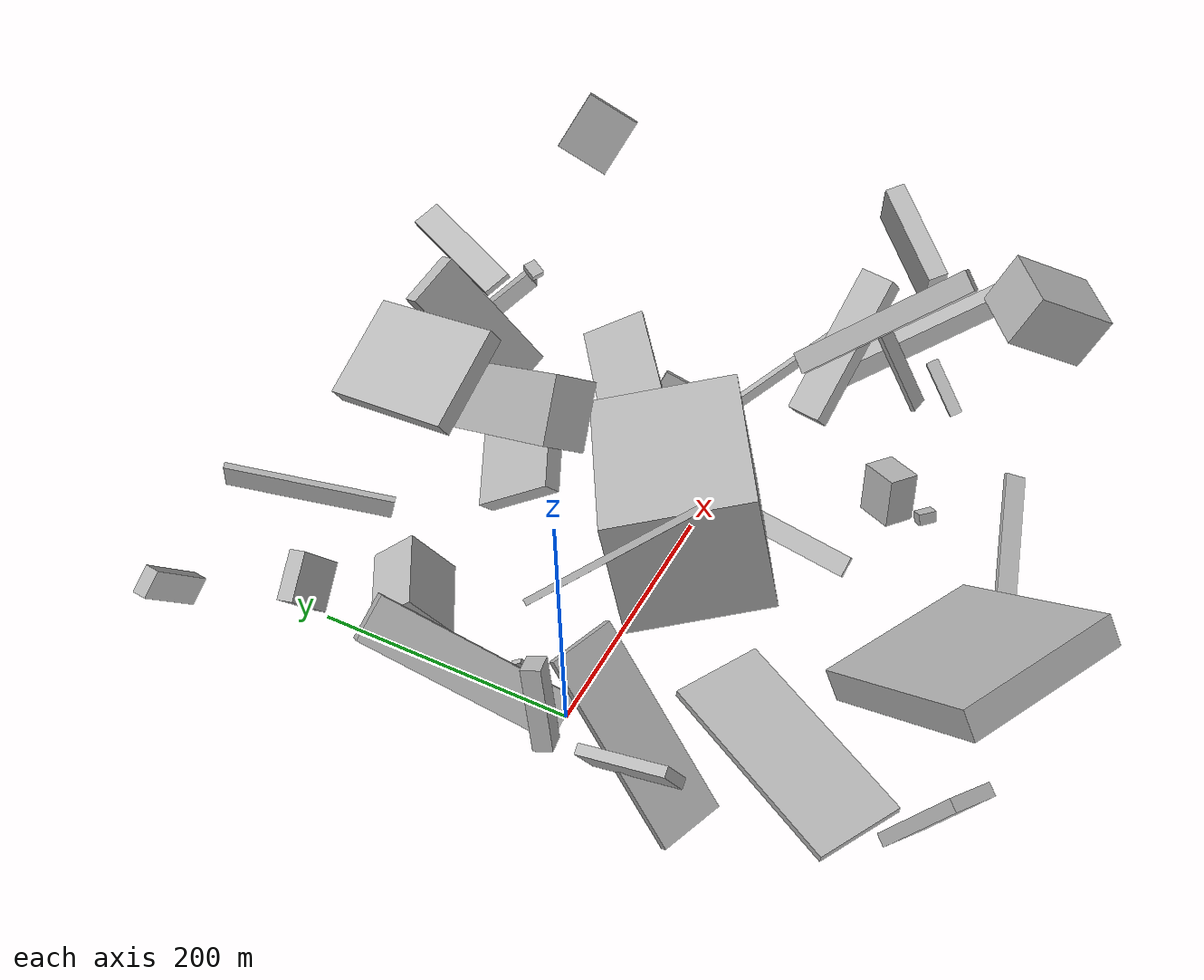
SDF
<sdf version="1.6">
 <world name="default">
  <scene>
   <sky><clouds><speed>12</speed></clouds></sky>
   <ambient>0.4 0.4 0.4 1</ambient>
   <background>0.7 0.7 0.7 1</background>
   <shadows>1</shadows>
  </scene>
  <gravity>0 0 -9.8066</gravity>
  <magnetic_field>6e-06 2.3e-05 -4.2e-05</magnetic_field>
  <physics default="0" name="default_physics" type="ode">
   <ode>
    <solver>
     <type>quick</type>
     <iters>10</iters>
     <sor>1.0</sor>
     <use_dynamic_moi_rescaling>0</use_dynamic_moi_rescaling>
    </solver>
    <constraints>
     <cfm>0</cfm>
     <erp>0.2</erp>
     <contact_max_correcting_vel>100</contact_max_correcting_vel>
     <contact_surface_layer>0.001</contact_surface_layer>
    </constraints>
   </ode>
   <max_step_size>0.004</max_step_size>
   <real_time_factor>1</real_time_factor>
   <real_time_update_rate>250</real_time_update_rate>
  </physics>
  <light name="sun" type="directional">
   <pose>0 0 10 0 0 0</pose>
   <diffuse>0.8 0.8 0.8 1</diffuse>
   <specular>0.2 0.2 0.2 1</specular>
   <attenuation>
    <range>1000</range>
    <constant>0.9</constant>
    <linear>0.01</linear>
    <quadratic>0.001</quadratic>
   </attenuation>
   <direction>-0.5 0.1 -0.9</direction>
  </light>
  <model name="building_1">
   <static>0</static>
   <pose>336.923192823895 -94.06034917122588 138.85958540771753 0.7824924398263149 -0.634588450151527 -1.1526687910232598</pose>
   <link name="link">
    <gravity>0</gravity>
    <pose>0 0 4.5 0 0 0</pose>
    <collision name="collision"><geometry><box><size>150 17 9</size></box></geometry></collision>
    <visual name="visual">
     <cast_shadows>0</cast_shadows>
     <geometry><box><size>150 17 9</size></box></geometry>
     <material>
      <script>
       <uri>model://HANNAS_wall/materials/scripts</uri>
       <uri>model://HANNAS_wall/materials/textures</uri>
       <name>vrc/HANNAS_wall</name>
      </script>
     </material>
    </visual>
   </link>
  </model>
  <model name="building_2">
   <static>0</static>
   <pose>191.11641187411416 -57.24178904266765 80.60668443130706 1.732739164079688 -0.150335353881893 -2.607841127370014</pose>
   <link name="link">
    <gravity>0</gravity>
    <pose>0 0 56.0 0 0 0</pose>
    <collision name="collision"><geometry><box><size>150 99 112</size></box></geometry></collision>
    <visual name="visual">
     <cast_shadows>0</cast_shadows>
     <geometry><box><size>150 99 112</size></box></geometry>
     <material>
      <script>
       <uri>model://HANNAS_wall/materials/scripts</uri>
       <uri>model://HANNAS_wall/materials/textures</uri>
       <name>vrc/HANNAS_wall</name>
      </script>
     </material>
    </visual>
   </link>
  </model>
  <model name="building_3">
   <static>0</static>
   <pose>326.5320727017373 -212.5894145307276 36.901625823548954 -1.929294150139659 -0.3678269469761054 2.0134297527295004</pose>
   <link name="link">
    <gravity>0</gravity>
    <pose>0 0 74.0 0 0 0</pose>
    <collision name="collision"><geometry><box><size>16 4 148</size></box></geometry></collision>
    <visual name="visual">
     <cast_shadows>0</cast_shadows>
     <geometry><box><size>16 4 148</size></box></geometry>
     <material>
      <script>
       <uri>model://HANNAS_wall/materials/scripts</uri>
       <uri>model://HANNAS_wall/materials/textures</uri>
       <name>vrc/HANNAS_wall</name>
      </script>
     </material>
    </visual>
   </link>
  </model>
  <model name="building_4">
   <static>0</static>
   <pose>201.5505477172291 -127.86327710603878 16.917807844448177 -1.5194058226262577 0.9272553805815924 -0.10173908822122885</pose>
   <link name="link">
    <gravity>0</gravity>
    <pose>0 0 75.0 0 0 0</pose>
    <collision name="collision"><geometry><box><size>4 16 150</size></box></geometry></collision>
    <visual name="visual">
     <cast_shadows>0</cast_shadows>
     <geometry><box><size>4 16 150</size></box></geometry>
     <material>
      <script>
       <uri>model://HANNAS_wall/materials/scripts</uri>
       <uri>model://HANNAS_wall/materials/textures</uri>
       <name>vrc/HANNAS_wall</name>
      </script>
     </material>
    </visual>
   </link>
  </model>
  <model name="building_5">
   <static>0</static>
   <pose>346.75250563936436 239.91512775822423 23.964687603796612 -2.100969203835881 -0.5664100547445637 -0.7148746247518671</pose>
   <link name="link">
    <gravity>0</gravity>
    <pose>0 0 9.0 0 0 0</pose>
    <collision name="collision"><geometry><box><size>43 13 18</size></box></geometry></collision>
    <visual name="visual">
     <cast_shadows>0</cast_shadows>
     <geometry><box><size>43 13 18</size></box></geometry>
     <material>
      <script>
       <uri>model://HANNAS_wall/materials/scripts</uri>
       <uri>model://HANNAS_wall/materials/textures</uri>
       <name>vrc/HANNAS_wall</name>
      </script>
     </material>
    </visual>
   </link>
  </model>
  <model name="building_6">
   <static>0</static>
   <pose>350.8989251505437 -8.272039961467351 36.297439743433074 0.6702223406346826 -1.3290058598615002 -2.675885019324481</pose>
   <link name="link">
    <gravity>0</gravity>
    <pose>0 0 2.0 0 0 0</pose>
    <collision name="collision"><geometry><box><size>16 150 4</size></box></geometry></collision>
    <visual name="visual">
     <cast_shadows>0</cast_shadows>
     <geometry><box><size>16 150 4</size></box></geometry>
     <material>
      <script>
       <uri>model://HANNAS_wall/materials/scripts</uri>
       <uri>model://HANNAS_wall/materials/textures</uri>
       <name>vrc/HANNAS_wall</name>
      </script>
     </material>
    </visual>
   </link>
  </model>
  <model name="building_7">
   <static>0</static>
   <pose>-58.08897731322606 52.00201571602901 69.9594051233646 0.9008815109686897 -0.5394050389927594 1.8280279723692194</pose>
   <link name="link">
    <gravity>0</gravity>
    <pose>0 0 17.0 0 0 0</pose>
    <collision name="collision"><geometry><box><size>150 16 34</size></box></geometry></collision>
    <visual name="visual">
     <cast_shadows>0</cast_shadows>
     <geometry><box><size>150 16 34</size></box></geometry>
     <material>
      <script>
       <uri>model://HANNAS_wall/materials/scripts</uri>
       <uri>model://HANNAS_wall/materials/textures</uri>
       <name>vrc/HANNAS_wall</name>
      </script>
     </material>
    </visual>
   </link>
  </model>
  <model name="building_8">
   <static>0</static>
   <pose>126.57909315085317 215.96384966571293 93.23888906508675 0.5377447378229835 -1.056024467160656 2.4880142042954985</pose>
   <link name="link">
    <gravity>0</gravity>
    <pose>0 0 41.0 0 0 0</pose>
    <collision name="collision"><geometry><box><size>15 114 82</size></box></geometry></collision>
    <visual name="visual">
     <cast_shadows>0</cast_shadows>
     <geometry><box><size>15 114 82</size></box></geometry>
     <material>
      <script>
       <uri>model://HANNAS_wall/materials/scripts</uri>
       <uri>model://HANNAS_wall/materials/textures</uri>
       <name>vrc/HANNAS_wall</name>
      </script>
     </material>
    </visual>
   </link>
  </model>
  <model name="building_9">
   <static>0</static>
   <pose>446.376140482911 -216.9200912120476 98.74631585859207 0.06319429475360616 1.0318855637821702 2.317634516996326</pose>
   <link name="link">
    <gravity>0</gravity>
    <pose>0 0 35.5 0 0 0</pose>
    <collision name="collision"><geometry><box><size>45 54 71</size></box></geometry></collision>
    <visual name="visual">
     <cast_shadows>0</cast_shadows>
     <geometry><box><size>45 54 71</size></box></geometry>
     <material>
      <script>
       <uri>model://HANNAS_wall/materials/scripts</uri>
       <uri>model://HANNAS_wall/materials/textures</uri>
       <name>vrc/HANNAS_wall</name>
      </script>
     </material>
    </visual>
   </link>
  </model>
  <model name="building_10">
   <static>0</static>
   <pose>183.7493176896424 108.43721208619583 50.571289075669576 2.2590799137231627 0.37217763717591623 -2.719101657918002</pose>
   <link name="link">
    <gravity>0</gravity>
    <pose>0 0 35.5 0 0 0</pose>
    <collision name="collision"><geometry><box><size>65 15 71</size></box></geometry></collision>
    <visual name="visual">
     <cast_shadows>0</cast_shadows>
     <geometry><box><size>65 15 71</size></box></geometry>
     <material>
      <script>
       <uri>model://HANNAS_wall/materials/scripts</uri>
       <uri>model://HANNAS_wall/materials/textures</uri>
       <name>vrc/HANNAS_wall</name>
      </script>
     </material>
    </visual>
   </link>
  </model>
  <model name="building_11">
   <static>0</static>
   <pose>149.60032702942578 129.35791748130333 85.59854409863654 -0.6743421797826362 -0.4987148278305059 -1.9047029515994833</pose>
   <link name="link">
    <gravity>0</gravity>
    <pose>0 0 26.0 0 0 0</pose>
    <collision name="collision"><geometry><box><size>149 36 52</size></box></geometry></collision>
    <visual name="visual">
     <cast_shadows>0</cast_shadows>
     <geometry><box><size>149 36 52</size></box></geometry>
     <material>
      <script>
       <uri>model://HANNAS_wall/materials/scripts</uri>
       <uri>model://HANNAS_wall/materials/textures</uri>
       <name>vrc/HANNAS_wall</name>
      </script>
     </material>
    </visual>
   </link>
  </model>
  <model name="building_12">
   <static>0</static>
   <pose>-5.505509161439424 -168.15835301990407 71.23773177616499 -0.0701587905225909 -0.08938591045334203 2.6797823904483766</pose>
   <link name="link">
    <gravity>0</gravity>
    <pose>0 0 2.5 0 0 0</pose>
    <collision name="collision"><geometry><box><size>67 150 5</size></box></geometry></collision>
    <visual name="visual">
     <cast_shadows>0</cast_shadows>
     <geometry><box><size>67 150 5</size></box></geometry>
     <material>
      <script>
       <uri>model://HANNAS_wall/materials/scripts</uri>
       <uri>model://HANNAS_wall/materials/textures</uri>
       <name>vrc/HANNAS_wall</name>
      </script>
     </material>
    </visual>
   </link>
  </model>
  <model name="building_13">
   <static>0</static>
   <pose>320.7960986872054 60.96658081251445 21.72956833989188 -2.719923994848244 -0.457674240051949 1.7805276571009947</pose>
   <link name="link">
    <gravity>0</gravity>
    <pose>0 0 10.5 0 0 0</pose>
    <collision name="collision"><geometry><box><size>41 4 21</size></box></geometry></collision>
    <visual name="visual">
     <cast_shadows>0</cast_shadows>
     <geometry><box><size>41 4 21</size></box></geometry>
     <material>
      <script>
       <uri>model://HANNAS_wall/materials/scripts</uri>
       <uri>model://HANNAS_wall/materials/textures</uri>
       <name>vrc/HANNAS_wall</name>
      </script>
     </material>
    </visual>
   </link>
  </model>
  <model name="building_14">
   <static>0</static>
   <pose>347.33048331118135 -62.15480480309026 87.65488709465615 -0.07659672021330964 -0.6306555426463953 -0.1705520436896939</pose>
   <link name="link">
    <gravity>0</gravity>
    <pose>0 0 8.5 0 0 0</pose>
    <collision name="collision"><geometry><box><size>121 28 17</size></box></geometry></collision>
    <visual name="visual">
     <cast_shadows>0</cast_shadows>
     <geometry><box><size>121 28 17</size></box></geometry>
     <material>
      <script>
       <uri>model://HANNAS_wall/materials/scripts</uri>
       <uri>model://HANNAS_wall/materials/textures</uri>
       <name>vrc/HANNAS_wall</name>
      </script>
     </material>
    </visual>
   </link>
  </model>
  <model name="building_15">
   <static>0</static>
   <pose>264.391722136229 129.1375089599269 22.145864922241667 -1.10202745174695 -0.47579606828066123 0.792563192841625</pose>
   <link name="link">
    <gravity>0</gravity>
    <pose>0 0 44.0 0 0 0</pose>
    <collision name="collision"><geometry><box><size>9 4 88</size></box></geometry></collision>
    <visual name="visual">
     <cast_shadows>0</cast_shadows>
     <geometry><box><size>9 4 88</size></box></geometry>
     <material>
      <script>
       <uri>model://HANNAS_wall/materials/scripts</uri>
       <uri>model://HANNAS_wall/materials/textures</uri>
       <name>vrc/HANNAS_wall</name>
      </script>
     </material>
    </visual>
   </link>
  </model>
  <model name="building_16">
   <static>0</static>
   <pose>241.42164142086466 -141.2686478462369 91.85987218476376 2.932943192539863 0.20725312567478846 -0.5641254716700713</pose>
   <link name="link">
    <gravity>0</gravity>
    <pose>0 0 18.5 0 0 0</pose>
    <collision name="collision"><geometry><box><size>24 30 37</size></box></geometry></collision>
    <visual name="visual">
     <cast_shadows>0</cast_shadows>
     <geometry><box><size>24 30 37</size></box></geometry>
     <material>
      <script>
       <uri>model://HANNAS_wall/materials/scripts</uri>
       <uri>model://HANNAS_wall/materials/textures</uri>
       <name>vrc/HANNAS_wall</name>
      </script>
     </material>
    </visual>
   </link>
  </model>
  <model name="building_17">
   <static>0</static>
   <pose>460.2778389139261 216.0212203758641 124.1133318579297 -2.233641104841943 -0.9182712608179894 -0.600759592492485</pose>
   <link name="link">
    <gravity>0</gravity>
    <pose>0 0 2.5 0 0 0</pose>
    <collision name="collision"><geometry><box><size>53 46 5</size></box></geometry></collision>
    <visual name="visual">
     <cast_shadows>0</cast_shadows>
     <geometry><box><size>53 46 5</size></box></geometry>
     <material>
      <script>
       <uri>model://HANNAS_wall/materials/scripts</uri>
       <uri>model://HANNAS_wall/materials/textures</uri>
       <name>vrc/HANNAS_wall</name>
      </script>
     </material>
    </visual>
   </link>
  </model>
  <model name="building_18">
   <static>0</static>
   <pose>8.453695568377347 200.1880714426511 139.19209090543146 -2.628868660425674 0.24022095421805473 -1.1648724354684439</pose>
   <link name="link">
    <gravity>0</gravity>
    <pose>0 0 28.0 0 0 0</pose>
    <collision name="collision"><geometry><box><size>119 4 56</size></box></geometry></collision>
    <visual name="visual">
     <cast_shadows>0</cast_shadows>
     <geometry><box><size>119 4 56</size></box></geometry>
     <material>
      <script>
       <uri>model://HANNAS_wall/materials/scripts</uri>
       <uri>model://HANNAS_wall/materials/textures</uri>
       <name>vrc/HANNAS_wall</name>
      </script>
     </material>
    </visual>
   </link>
  </model>
  <model name="building_19">
   <static>0</static>
   <pose>-9.097837067756378 25.169973386603374 48.23552936743712 0.02042543785156358 -0.5363725297684133 -1.2963451578908824</pose>
   <link name="link">
    <gravity>0</gravity>
    <pose>0 0 6.0 0 0 0</pose>
    <collision name="collision"><geometry><box><size>8 4 12</size></box></geometry></collision>
    <visual name="visual">
     <cast_shadows>0</cast_shadows>
     <geometry><box><size>8 4 12</size></box></geometry>
     <material>
      <script>
       <uri>model://HANNAS_wall/materials/scripts</uri>
       <uri>model://HANNAS_wall/materials/textures</uri>
       <name>vrc/HANNAS_wall</name>
      </script>
     </material>
    </visual>
   </link>
  </model>
  <model name="building_20">
   <static>0</static>
   <pose>11.62595827256915 145.84077491805303 33.46298101434492 0.9375713460623717 -0.02934997226745807 0.5159615892699546</pose>
   <link name="link">
    <gravity>0</gravity>
    <pose>0 0 18.0 0 0 0</pose>
    <collision name="collision"><geometry><box><size>60 47 36</size></box></geometry></collision>
    <visual name="visual">
     <cast_shadows>0</cast_shadows>
     <geometry><box><size>60 47 36</size></box></geometry>
     <material>
      <script>
       <uri>model://HANNAS_wall/materials/scripts</uri>
       <uri>model://HANNAS_wall/materials/textures</uri>
       <name>vrc/HANNAS_wall</name>
      </script>
     </material>
    </visual>
   </link>
  </model>
  <model name="building_21">
   <static>0</static>
   <pose>452.31105366221146 -79.6417278949826 124.62258883964304 1.972754527254186 -1.1646376907085363 -2.711820359306728</pose>
   <link name="link">
    <gravity>0</gravity>
    <pose>0 0 8.0 0 0 0</pose>
    <collision name="collision"><geometry><box><size>47 84 16</size></box></geometry></collision>
    <visual name="visual">
     <cast_shadows>0</cast_shadows>
     <geometry><box><size>47 84 16</size></box></geometry>
     <material>
      <script>
       <uri>model://HANNAS_wall/materials/scripts</uri>
       <uri>model://HANNAS_wall/materials/textures</uri>
       <name>vrc/HANNAS_wall</name>
      </script>
     </material>
    </visual>
   </link>
  </model>
  <model name="building_22">
   <static>0</static>
   <pose>2.0133606445966827 200.15424383636844 34.55950588949244 -0.337792209403827 -0.5758662534513516 0.20117784905473418</pose>
   <link name="link">
    <gravity>0</gravity>
    <pose>0 0 19.5 0 0 0</pose>
    <collision name="collision"><geometry><box><size>37 14 39</size></box></geometry></collision>
    <visual name="visual">
     <cast_shadows>0</cast_shadows>
     <geometry><box><size>37 14 39</size></box></geometry>
     <material>
      <script>
       <uri>model://HANNAS_wall/materials/scripts</uri>
       <uri>model://HANNAS_wall/materials/textures</uri>
       <name>vrc/HANNAS_wall</name>
      </script>
     </material>
    </visual>
   </link>
  </model>
  <model name="building_23">
   <static>0</static>
   <pose>343.59469883581573 -124.4696869713761 58.33723713720778 0.0445254175839417 -0.5150183987676734 -1.7599154015308445</pose>
   <link name="link">
    <gravity>0</gravity>
    <pose>0 0 41.5 0 0 0</pose>
    <collision name="collision"><geometry><box><size>4 14 83</size></box></geometry></collision>
    <visual name="visual">
     <cast_shadows>0</cast_shadows>
     <geometry><box><size>4 14 83</size></box></geometry>
     <material>
      <script>
       <uri>model://HANNAS_wall/materials/scripts</uri>
       <uri>model://HANNAS_wall/materials/textures</uri>
       <name>vrc/HANNAS_wall</name>
      </script>
     </material>
    </visual>
   </link>
  </model>
  <model name="building_24">
   <static>0</static>
   <pose>24.710603266277715 42.61528339026878 77.27443460486764 0.7699776340224361 0.6141631080524981 0.0008728890648028643</pose>
   <link name="link">
    <gravity>0</gravity>
    <pose>0 0 75.0 0 0 0</pose>
    <collision name="collision"><geometry><box><size>4 5 150</size></box></geometry></collision>
    <visual name="visual">
     <cast_shadows>0</cast_shadows>
     <geometry><box><size>4 5 150</size></box></geometry>
     <material>
      <script>
       <uri>model://HANNAS_wall/materials/scripts</uri>
       <uri>model://HANNAS_wall/materials/textures</uri>
       <name>vrc/HANNAS_wall</name>
      </script>
     </material>
    </visual>
   </link>
  </model>
  <model name="building_25">
   <static>0</static>
   <pose>256.2643598309236 -167.5020968378943 32.84919866118973 -0.41672802169798956 0.06285376215271699 -0.7484256638854446</pose>
   <link name="link">
    <gravity>0</gravity>
    <pose>0 0 4.5 0 0 0</pose>
    <collision name="collision"><geometry><box><size>14 9 9</size></box></geometry></collision>
    <visual name="visual">
     <cast_shadows>0</cast_shadows>
     <geometry><box><size>14 9 9</size></box></geometry>
     <material>
      <script>
       <uri>model://HANNAS_wall/materials/scripts</uri>
       <uri>model://HANNAS_wall/materials/textures</uri>
       <name>vrc/HANNAS_wall</name>
      </script>
     </material>
    </visual>
   </link>
  </model>
  <model name="building_26">
   <static>0</static>
   <pose>370.2963026661987 -148.6309930400531 35.38444275266695 -0.40640708935847486 0.8341008377593786 0.4881454798958444</pose>
   <link name="link">
    <gravity>0</gravity>
    <pose>0 0 23.0 0 0 0</pose>
    <collision name="collision"><geometry><box><size>4 10 46</size></box></geometry></collision>
    <visual name="visual">
     <cast_shadows>0</cast_shadows>
     <geometry><box><size>4 10 46</size></box></geometry>
     <material>
      <script>
       <uri>model://HANNAS_wall/materials/scripts</uri>
       <uri>model://HANNAS_wall/materials/textures</uri>
       <name>vrc/HANNAS_wall</name>
      </script>
     </material>
    </visual>
   </link>
  </model>
  <model name="building_27">
   <static>0</static>
   <pose>109.43847773289295 -202.7508438979506 76.67604996513259 0.0024617522586019894 -0.9387908012167593 1.097550024983969</pose>
   <link name="link">
    <gravity>0</gravity>
    <pose>0 0 75.0 0 0 0</pose>
    <collision name="collision"><geometry><box><size>23 124 150</size></box></geometry></collision>
    <visual name="visual">
     <cast_shadows>0</cast_shadows>
     <geometry><box><size>23 124 150</size></box></geometry>
     <material>
      <script>
       <uri>model://HANNAS_wall/materials/scripts</uri>
       <uri>model://HANNAS_wall/materials/textures</uri>
       <name>vrc/HANNAS_wall</name>
      </script>
     </material>
    </visual>
   </link>
  </model>
  <model name="building_28">
   <static>0</static>
   <pose>298.33810713539697 80.1374436263467 56.294900826967556 2.629613780555563 1.1957919352252309 -1.4405151544508723</pose>
   <link name="link">
    <gravity>0</gravity>
    <pose>0 0 26.0 0 0 0</pose>
    <collision name="collision"><geometry><box><size>4 150 52</size></box></geometry></collision>
    <visual name="visual">
     <cast_shadows>0</cast_shadows>
     <geometry><box><size>4 150 52</size></box></geometry>
     <material>
      <script>
       <uri>model://HANNAS_wall/materials/scripts</uri>
       <uri>model://HANNAS_wall/materials/textures</uri>
       <name>vrc/HANNAS_wall</name>
      </script>
     </material>
    </visual>
   </link>
  </model>
  <model name="building_29">
   <static>0</static>
   <pose>-62.06996192410032 -76.6379190302238 77.21193945161481 -2.6955054363777857 -0.23865246924359976 -1.5689671469930946</pose>
   <link name="link">
    <gravity>0</gravity>
    <pose>0 0 15.0 0 0 0</pose>
    <collision name="collision"><geometry><box><size>68 8 30</size></box></geometry></collision>
    <visual name="visual">
     <cast_shadows>0</cast_shadows>
     <geometry><box><size>68 8 30</size></box></geometry>
     <material>
      <script>
       <uri>model://HANNAS_wall/materials/scripts</uri>
       <uri>model://HANNAS_wall/materials/textures</uri>
       <name>vrc/HANNAS_wall</name>
      </script>
     </material>
    </visual>
   </link>
  </model>
  <model name="building_30">
   <static>0</static>
   <pose>-70.3728203304664 252.16308232264578 82.15409609193958 0.07898961724392539 -0.6681822068904866 -0.14308352263976784</pose>
   <link name="link">
    <gravity>0</gravity>
    <pose>0 0 31.5 0 0 0</pose>
    <collision name="collision"><geometry><box><size>20 10 63</size></box></geometry></collision>
    <visual name="visual">
     <cast_shadows>0</cast_shadows>
     <geometry><box><size>20 10 63</size></box></geometry>
     <material>
      <script>
       <uri>model://HANNAS_wall/materials/scripts</uri>
       <uri>model://HANNAS_wall/materials/textures</uri>
       <name>vrc/HANNAS_wall</name>
      </script>
     </material>
    </visual>
   </link>
  </model>
  <model name="building_31">
   <static>0</static>
   <pose>424.0173175296753 -93.83664818112746 62.347786591206955 2.7818560679182474 -0.31691472357085587 0.8666542634353325</pose>
   <link name="link">
    <gravity>0</gravity>
    <pose>0 0 18.5 0 0 0</pose>
    <collision name="collision"><geometry><box><size>11 150 37</size></box></geometry></collision>
    <visual name="visual">
     <cast_shadows>0</cast_shadows>
     <geometry><box><size>11 150 37</size></box></geometry>
     <material>
      <script>
       <uri>model://HANNAS_wall/materials/scripts</uri>
       <uri>model://HANNAS_wall/materials/textures</uri>
       <name>vrc/HANNAS_wall</name>
      </script>
     </material>
    </visual>
   </link>
  </model>
  <model name="building_32">
   <static>0</static>
   <pose>-7.690479583780856 -79.76169194467253 61.703104464259376 1.6671037971775025 -0.7417547231097867 -2.0240125609256285</pose>
   <link name="link">
    <gravity>0</gravity>
    <pose>0 0 24.0 0 0 0</pose>
    <collision name="collision"><geometry><box><size>7 150 48</size></box></geometry></collision>
    <visual name="visual">
     <cast_shadows>0</cast_shadows>
     <geometry><box><size>7 150 48</size></box></geometry>
     <material>
      <script>
       <uri>model://HANNAS_wall/materials/scripts</uri>
       <uri>model://HANNAS_wall/materials/textures</uri>
       <name>vrc/HANNAS_wall</name>
      </script>
     </material>
    </visual>
   </link>
  </model>
  <model name="building_33">
   <static>0</static>
   <pose>-67.1667386902752 -24.1049790712897 68.05518926832256 -0.31757117283783953 -0.1671372909053552 -1.278542544652401</pose>
   <link name="link">
    <gravity>0</gravity>
    <pose>0 0 31.5 0 0 0</pose>
    <collision name="collision"><geometry><box><size>14 17 63</size></box></geometry></collision>
    <visual name="visual">
     <cast_shadows>0</cast_shadows>
     <geometry><box><size>14 17 63</size></box></geometry>
     <material>
      <script>
       <uri>model://HANNAS_wall/materials/scripts</uri>
       <uri>model://HANNAS_wall/materials/textures</uri>
       <name>vrc/HANNAS_wall</name>
      </script>
     </material>
    </visual>
   </link>
  </model>
  <model name="building_34">
   <static>0</static>
   <pose>248.72934231978434 209.57274732171945 78.78906909892743 2.07627759030019 0.3592526440751693 2.900671885644712</pose>
   <link name="link">
    <gravity>0</gravity>
    <pose>0 0 8.0 0 0 0</pose>
    <collision name="collision"><geometry><box><size>45 118 16</size></box></geometry></collision>
    <visual name="visual">
     <cast_shadows>0</cast_shadows>
     <geometry><box><size>45 118 16</size></box></geometry>
     <material>
      <script>
       <uri>model://HANNAS_wall/materials/scripts</uri>
       <uri>model://HANNAS_wall/materials/textures</uri>
       <name>vrc/HANNAS_wall</name>
      </script>
     </material>
    </visual>
   </link>
  </model>
  <model name="building_35">
   <static>0</static>
   <pose>-48.02878933080996 -262.3396398734114 102.70395182423735 -0.38500995678532945 0.4529841656369976 -2.225158282633908</pose>
   <link name="link">
    <gravity>0</gravity>
    <pose>0 0 35.5 0 0 0</pose>
    <collision name="collision"><geometry><box><size>9 35 71</size></box></geometry></collision>
    <visual name="visual">
     <cast_shadows>0</cast_shadows>
     <geometry><box><size>9 35 71</size></box></geometry>
     <material>
      <script>
       <uri>model://HANNAS_wall/materials/scripts</uri>
       <uri>model://HANNAS_wall/materials/textures</uri>
       <name>vrc/HANNAS_wall</name>
      </script>
     </material>
    </visual>
   </link>
  </model>
  <model name="building_36">
   <static>0</static>
   <pose>307.3550314640315 228.37084917379707 72.0011319170617 1.3340376807640448 -1.2169554423587305 2.93287930131548</pose>
   <link name="link">
    <gravity>0</gravity>
    <pose>0 0 51.0 0 0 0</pose>
    <collision name="collision"><geometry><box><size>6 24 102</size></box></geometry></collision>
    <visual name="visual">
     <cast_shadows>0</cast_shadows>
     <geometry><box><size>6 24 102</size></box></geometry>
     <material>
      <script>
       <uri>model://HANNAS_wall/materials/scripts</uri>
       <uri>model://HANNAS_wall/materials/textures</uri>
       <name>vrc/HANNAS_wall</name>
      </script>
     </material>
    </visual>
   </link>
  </model>
  <model name="building_37">
   <static>0</static>
   <pose>354.6206433278396 222.25815978905723 55.3690024080681 -2.83451160849227 -0.06101014014805077 -0.4613747086871326</pose>
   <link name="link">
    <gravity>0</gravity>
    <pose>0 0 3.0 0 0 0</pose>
    <collision name="collision"><geometry><box><size>11 14 6</size></box></geometry></collision>
    <visual name="visual">
     <cast_shadows>0</cast_shadows>
     <geometry><box><size>11 14 6</size></box></geometry>
     <material>
      <script>
       <uri>model://HANNAS_wall/materials/scripts</uri>
       <uri>model://HANNAS_wall/materials/textures</uri>
       <name>vrc/HANNAS_wall</name>
      </script>
     </material>
    </visual>
   </link>
  </model>
 </world>
</sdf>
